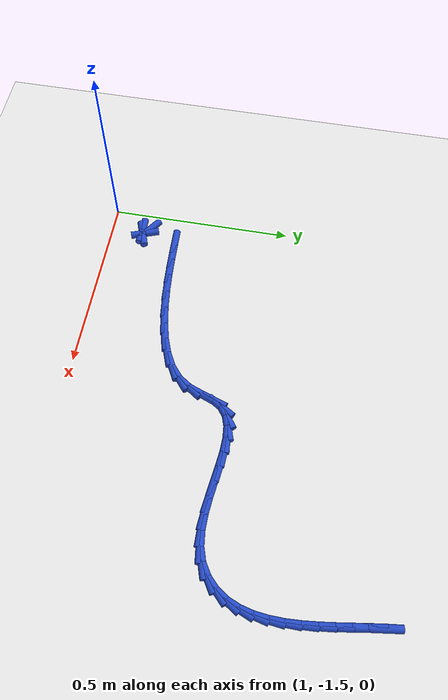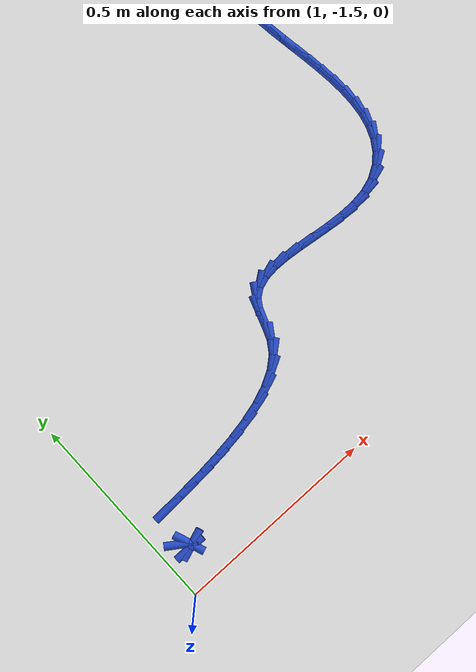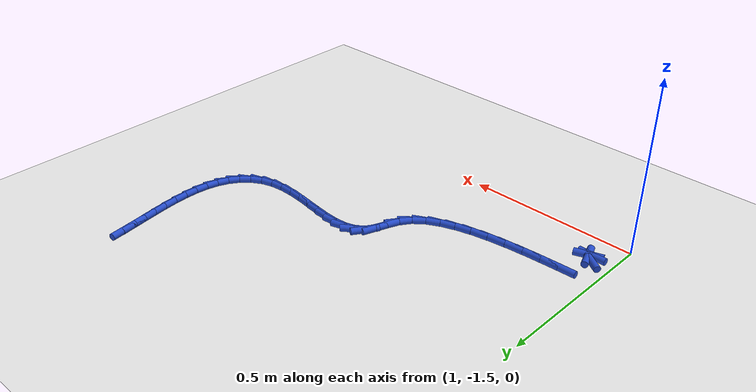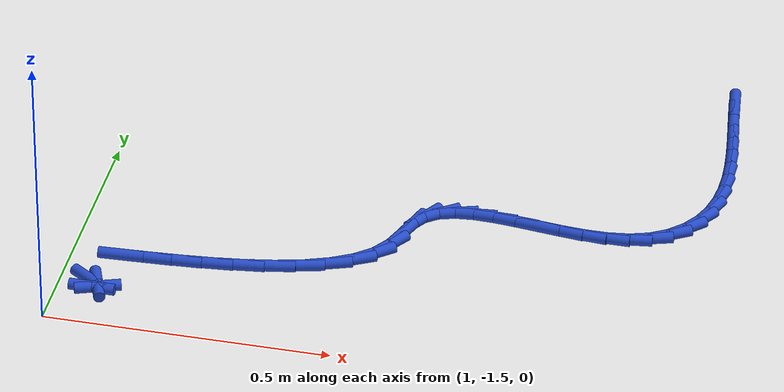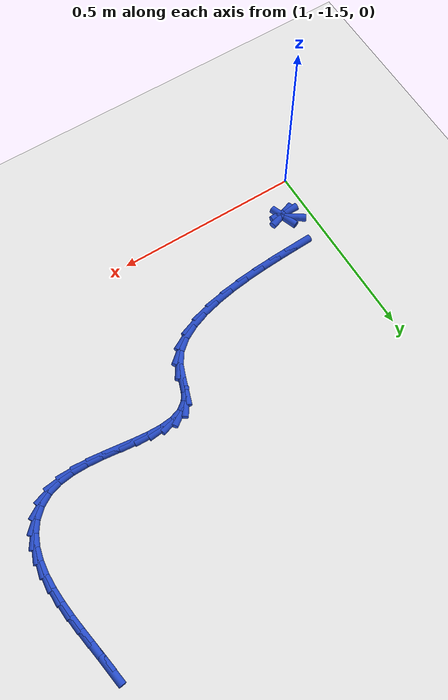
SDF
<sdf version="1.6">
 <world name="default">
  <model name="ground_plane">
   <static>1</static>
   <link name="link">
    <collision name="collision">
     <geometry><plane><normal>0 0 1</normal><size>100 100</size></plane></geometry>
     <surface><friction><ode><mu>100</mu><mu2>50</mu2></ode></friction></surface>
    </collision>
    <visual name="visual">
     <cast_shadows>0</cast_shadows>
     <geometry><plane><normal>0 0 1</normal><size>100 100</size></plane></geometry>
     <material>
      <script><uri>file://media/materials/scripts/gazebo.material</uri><name>Gazebo/WhiteGlow</name></script>
     </material>
    </visual>
   </link>
  </model>
  <model name="line">
   <link name="link_141">
    <pose>2.0285670701113183 -0.6345727002977124 0.01 0 1.57 -1.4315334805851658</pose>
    <collision name="collision">
     <geometry><cylinder><radius>0.01</radius><length>0.08</length></cylinder></geometry>
    </collision>
    <visual name="visual">
     <material>
      <script><name>Gazebo/Blue</name><uri>file://media/materials/scripts/gazebo.material</uri></script>
     </material>
     <geometry><cylinder><radius>0.01</radius><length>0.08</length></cylinder></geometry>
    </visual>
   </link>
   <link name="link_142">
    <pose>2.033438221701225 -0.6693243970464116 0.01 0 1.57 -1.4173790241304136</pose>
    <collision name="collision">
     <geometry><cylinder><radius>0.01</radius><length>0.08</length></cylinder></geometry>
    </collision>
    <visual name="visual">
     <material>
      <script><name>Gazebo/Blue</name><uri>file://media/materials/scripts/gazebo.material</uri></script>
     </material>
     <geometry><cylinder><radius>0.01</radius><length>0.08</length></cylinder></geometry>
    </visual>
   </link>
   <link name="link_143">
    <pose>2.0390529133088573 -0.7056343274212651 0.01 0 1.57 -1.416758596072348</pose>
    <collision name="collision">
     <geometry><cylinder><radius>0.01</radius><length>0.08</length></cylinder></geometry>
    </collision>
    <visual name="visual">
     <material>
      <script><name>Gazebo/Blue</name><uri>file://media/materials/scripts/gazebo.material</uri></script>
     </material>
     <geometry><cylinder><radius>0.01</radius><length>0.08</length></cylinder></geometry>
    </visual>
   </link>
   <link name="link_144">
    <pose>2.044879123798318 -0.7431579698248991 0.01 0 1.57 -1.4322631177795835</pose>
    <collision name="collision">
     <geometry><cylinder><radius>0.01</radius><length>0.08</length></cylinder></geometry>
    </collision>
    <visual name="visual">
     <material>
      <script><name>Gazebo/Blue</name><uri>file://media/materials/scripts/gazebo.material</uri></script>
     </material>
     <geometry><cylinder><radius>0.01</radius><length>0.08</length></cylinder></geometry>
    </visual>
   </link>
   <link name="link_145">
    <pose>2.0502038768240998 -0.7813484236389886 0.01 0 1.57 -1.4639211533162848</pose>
    <collision name="collision">
     <geometry><cylinder><radius>0.01</radius><length>0.08</length></cylinder></geometry>
    </collision>
    <visual name="visual">
     <material>
      <script><name>Gazebo/Blue</name><uri>file://media/materials/scripts/gazebo.material</uri></script>
     </material>
     <geometry><cylinder><radius>0.01</radius><length>0.08</length></cylinder></geometry>
    </visual>
   </link>
   <link name="link_146">
    <pose>2.0543139329366675 -0.8196584939915365 0.01 0 1.57 -1.5132575804763402</pose>
    <collision name="collision">
     <geometry><cylinder><radius>0.01</radius><length>0.08</length></cylinder></geometry>
    </collision>
    <visual name="visual">
     <material>
      <script><name>Gazebo/Blue</name><uri>file://media/materials/scripts/gazebo.material</uri></script>
     </material>
     <geometry><cylinder><radius>0.01</radius><length>0.08</length></cylinder></geometry>
    </visual>
   </link>
   <link name="link_147">
    <pose>2.0564960526864855 -0.8575409860105414 0.01 0 1.57 1.558359026222956</pose>
    <collision name="collision">
     <geometry><cylinder><radius>0.01</radius><length>0.08</length></cylinder></geometry>
    </collision>
    <visual name="visual">
     <material>
      <script><name>Gazebo/Blue</name><uri>file://media/materials/scripts/gazebo.material</uri></script>
     </material>
     <geometry><cylinder><radius>0.01</radius><length>0.08</length></cylinder></geometry>
    </visual>
   </link>
   <link name="link_148">
    <pose>2.056036996624017 -0.8944487048240033 0.01 0 1.57 1.4634420958104837</pose>
    <collision name="collision">
     <geometry><cylinder><radius>0.01</radius><length>0.08</length></cylinder></geometry>
    </collision>
    <visual name="visual">
     <material>
      <script><name>Gazebo/Blue</name><uri>file://media/materials/scripts/gazebo.material</uri></script>
     </material>
     <geometry><cylinder><radius>0.01</radius><length>0.08</length></cylinder></geometry>
    </visual>
   </link>
   <link name="link_149">
    <pose>2.052223525299726 -0.9298344555599221 0.01 0 1.57 1.33851351479543</pose>
    <collision name="collision">
     <geometry><cylinder><radius>0.01</radius><length>0.08</length></cylinder></geometry>
    </collision>
    <visual name="visual">
     <material>
      <script><name>Gazebo/Blue</name><uri>file://media/materials/scripts/gazebo.material</uri></script>
     </material>
     <geometry><cylinder><radius>0.01</radius><length>0.08</length></cylinder></geometry>
    </visual>
   </link>
   <link name="link_150">
    <pose>2.044342399264078 -0.963151043346298 0.01 0 1.57 1.1796115409766532</pose>
    <collision name="collision">
     <geometry><cylinder><radius>0.01</radius><length>0.08</length></cylinder></geometry>
    </collision>
    <visual name="visual">
     <material>
      <script><name>Gazebo/Blue</name><uri>file://media/materials/scripts/gazebo.material</uri></script>
     </material>
     <geometry><cylinder><radius>0.01</radius><length>0.08</length></cylinder></geometry>
    </visual>
   </link>
   <link name="link_151">
    <pose>2.031680379067536 -0.9938512733111309 0.01 0 1.57 0.9878801343291645</pose>
    <collision name="collision">
     <geometry><cylinder><radius>0.01</radius><length>0.08</length></cylinder></geometry>
    </collision>
    <visual name="visual">
     <material>
      <script><name>Gazebo/Blue</name><uri>file://media/materials/scripts/gazebo.material</uri></script>
     </material>
     <geometry><cylinder><radius>0.01</radius><length>0.08</length></cylinder></geometry>
    </visual>
   </link>
   <link name="link_152">
    <pose>2.0135242252605647 -1.0213879505824208 0.01 0 1.57 0.7742023735561363</pose>
    <collision name="collision">
     <geometry><cylinder><radius>0.01</radius><length>0.08</length></cylinder></geometry>
    </collision>
    <visual name="visual">
     <material>
      <script><name>Gazebo/Blue</name><uri>file://media/materials/scripts/gazebo.material</uri></script>
     </material>
     <geometry><cylinder><radius>0.01</radius><length>0.08</length></cylinder></geometry>
    </visual>
   </link>
   <link name="link_153">
    <pose>1.9892056381882934 -1.045168012784978 0.01 0 1.57 0.5471462917034153</pose>
    <collision name="collision">
     <geometry><cylinder><radius>0.01</radius><length>0.08</length></cylinder></geometry>
    </collision>
    <visual name="visual">
     <material>
      <script><name>Gazebo/Blue</name><uri>file://media/materials/scripts/gazebo.material</uri></script>
     </material>
     <geometry><cylinder><radius>0.01</radius><length>0.08</length></cylinder></geometry>
    </visual>
   </link>
   <link name="link_154">
    <pose>1.9591648180939776 -1.063468449266567 0.01 0 1.57 0.3099390565975013</pose>
    <collision name="collision">
     <geometry><cylinder><radius>0.01</radius><length>0.08</length></cylinder></geometry>
    </collision>
    <visual name="visual">
     <material>
      <script><name>Gazebo/Blue</name><uri>file://media/materials/scripts/gazebo.material</uri></script>
     </material>
     <geometry><cylinder><radius>0.01</radius><length>0.08</length></cylinder></geometry>
    </visual>
   </link>
   <link name="link_155">
    <pose>1.9248365317605338 -1.0744624368758298 0.01 0 1.57 0.12487583773043018</pose>
    <collision name="collision">
     <geometry><cylinder><radius>0.01</radius><length>0.08</length></cylinder></geometry>
    </collision>
    <visual name="visual">
     <material>
      <script><name>Gazebo/Blue</name><uri>file://media/materials/scripts/gazebo.material</uri></script>
     </material>
     <geometry><cylinder><radius>0.01</radius><length>0.08</length></cylinder></geometry>
    </visual>
   </link>
   <link name="link_156">
    <pose>1.8872816704655269 -1.0791766616545015 0.01 0 1.57 -0.0012686181432016762</pose>
    <collision name="collision">
     <geometry><cylinder><radius>0.01</radius><length>0.08</length></cylinder></geometry>
    </collision>
    <visual name="visual">
     <material>
      <script><name>Gazebo/Blue</name><uri>file://media/materials/scripts/gazebo.material</uri></script>
     </material>
     <geometry><cylinder><radius>0.01</radius><length>0.08</length></cylinder></geometry>
    </visual>
   </link>
   <link name="link_157">
    <pose>1.8474893364319334 -1.0791261803505048 0.01 0 1.57 -0.08023851713215129</pose>
    <collision name="collision">
     <geometry><cylinder><radius>0.01</radius><length>0.08</length></cylinder></geometry>
    </collision>
    <visual name="visual">
     <material>
      <script><name>Gazebo/Blue</name><uri>file://media/materials/scripts/gazebo.material</uri></script>
     </material>
     <geometry><cylinder><radius>0.01</radius><length>0.08</length></cylinder></geometry>
    </visual>
   </link>
   <link name="link_158">
    <pose>1.8064486318827329 -1.0758260497117618 0.01 0 1.57 -0.12130765190604231</pose>
    <collision name="collision">
     <geometry><cylinder><radius>0.01</radius><length>0.08</length></cylinder></geometry>
    </collision>
    <visual name="visual">
     <material>
      <script><name>Gazebo/Blue</name><uri>file://media/materials/scripts/gazebo.material</uri></script>
     </material>
     <geometry><cylinder><radius>0.01</radius><length>0.08</length></cylinder></geometry>
    </visual>
   </link>
   <link name="link_159">
    <pose>1.7651486590409013 -1.0707913264861946 0.01 0 1.57 -0.12879361118510047</pose>
    <collision name="collision">
     <geometry><cylinder><radius>0.01</radius><length>0.08</length></cylinder></geometry>
    </collision>
    <visual name="visual">
     <material>
      <script><name>Gazebo/Blue</name><uri>file://media/materials/scripts/gazebo.material</uri></script>
     </material>
     <geometry><cylinder><radius>0.01</radius><length>0.08</length></cylinder></geometry>
    </visual>
   </link>
   <link name="link_160">
    <pose>1.7245785201294173 -1.0655370674217262 0.01 0 1.57 -0.1015444047692561</pose>
    <collision name="collision">
     <geometry><cylinder><radius>0.01</radius><length>0.08</length></cylinder></geometry>
    </collision>
    <visual name="visual">
     <material>
      <script><name>Gazebo/Blue</name><uri>file://media/materials/scripts/gazebo.material</uri></script>
     </material>
     <geometry><cylinder><radius>0.01</radius><length>0.08</length></cylinder></geometry>
    </visual>
   </link>
   <link name="link_161">
    <pose>1.6857273173712581 -1.0615783292662784 0.01 0 1.57 -0.03175633711964724</pose>
    <collision name="collision">
     <geometry><cylinder><radius>0.01</radius><length>0.08</length></cylinder></geometry>
    </collision>
    <visual name="visual">
     <material>
      <script><name>Gazebo/Blue</name><uri>file://media/materials/scripts/gazebo.material</uri></script>
     </material>
     <geometry><cylinder><radius>0.01</radius><length>0.08</length></cylinder></geometry>
    </visual>
   </link>
   <link name="link_162">
    <pose>1.6495841529894022 -1.0604301687677742 0.01 0 1.57 0.09761979255955075</pose>
    <collision name="collision">
     <geometry><cylinder><radius>0.01</radius><length>0.08</length></cylinder></geometry>
    </collision>
    <visual name="visual">
     <material>
      <script><name>Gazebo/Blue</name><uri>file://media/materials/scripts/gazebo.material</uri></script>
     </material>
     <geometry><cylinder><radius>0.01</radius><length>0.08</length></cylinder></geometry>
    </visual>
   </link>
   <link name="link_163">
    <pose>1.6171381292068265 -1.0636076426741352 0.01 0 1.57 0.3141092640573255</pose>
    <collision name="collision">
     <geometry><cylinder><radius>0.01</radius><length>0.08</length></cylinder></geometry>
    </collision>
    <visual name="visual">
     <material>
      <script><name>Gazebo/Blue</name><uri>file://media/materials/scripts/gazebo.material</uri></script>
     </material>
     <geometry><cylinder><radius>0.01</radius><length>0.08</length></cylinder></geometry>
    </visual>
   </link>
   <link name="link_164">
    <pose>1.5893783482465091 -1.072625807733284 0.01 0 1.57 0.6379893156503159</pose>
    <collision name="collision">
     <geometry><cylinder><radius>0.01</radius><length>0.08</length></cylinder></geometry>
    </collision>
    <visual name="visual">
     <material>
      <script><name>Gazebo/Blue</name><uri>file://media/materials/scripts/gazebo.material</uri></script>
     </material>
     <geometry><cylinder><radius>0.01</radius><length>0.08</length></cylinder></geometry>
    </visual>
   </link>
   <link name="link_165">
    <pose>1.5672939123314273 -1.088999720693143 0.01 0 1.57 1.0184926986076475</pose>
    <collision name="collision">
     <geometry><cylinder><radius>0.01</radius><length>0.08</length></cylinder></geometry>
    </collision>
    <visual name="visual">
     <material>
      <script><name>Gazebo/Blue</name><uri>file://media/materials/scripts/gazebo.material</uri></script>
     </material>
     <geometry><cylinder><radius>0.01</radius><length>0.08</length></cylinder></geometry>
    </visual>
   </link>
   <link name="link_166">
    <pose>1.5517877195275571 -1.1141607050543356 0.01 0 1.57 1.2391382168447311</pose>
    <collision name="collision">
     <geometry><cylinder><radius>0.01</radius><length>0.08</length></cylinder></geometry>
    </collision>
    <visual name="visual">
     <material>
      <script><name>Gazebo/Blue</name><uri>file://media/materials/scripts/gazebo.material</uri></script>
     </material>
     <geometry><cylinder><radius>0.01</radius><length>0.08</length></cylinder></geometry>
    </visual>
   </link>
   <link name="link_167">
    <pose>1.5406462760112014 -1.1465130190128414 0.01 0 1.57 1.2093540168957995</pose>
    <collision name="collision">
     <geometry><cylinder><radius>0.01</radius><length>0.08</length></cylinder></geometry>
    </collision>
    <visual name="visual">
     <material>
      <script><name>Gazebo/Blue</name><uri>file://media/materials/scripts/gazebo.material</uri></script>
     </material>
     <geometry><cylinder><radius>0.01</radius><length>0.08</length></cylinder></geometry>
    </visual>
   </link>
   <link name="link_168">
    <pose>1.5277386099256605 -1.1806557312200539 0.01 0 1.57 0.9761623523671831</pose>
    <collision name="collision">
     <geometry><cylinder><radius>0.01</radius><length>0.08</length></cylinder></geometry>
    </collision>
    <visual name="visual">
     <material>
      <script><name>Gazebo/Blue</name><uri>file://media/materials/scripts/gazebo.material</uri></script>
     </material>
     <geometry><cylinder><radius>0.01</radius><length>0.08</length></cylinder></geometry>
    </visual>
   </link>
   <link name="link_169">
    <pose>1.507056704129479 -1.2112372380858196 0.01 0 1.57 0.6992923135053776</pose>
    <collision name="collision">
     <geometry><cylinder><radius>0.01</radius><length>0.08</length></cylinder></geometry>
    </collision>
    <visual name="visual">
     <material>
      <script><name>Gazebo/Blue</name><uri>file://media/materials/scripts/gazebo.material</uri></script>
     </material>
     <geometry><cylinder><radius>0.01</radius><length>0.08</length></cylinder></geometry>
    </visual>
   </link>
   <link name="link_170">
    <pose>1.4770990198928962 -1.236434027564991 0.01 0 1.57 0.4942149645727232</pose>
    <collision name="collision">
     <geometry><cylinder><radius>0.01</radius><length>0.08</length></cylinder></geometry>
    </collision>
    <visual name="visual">
     <material>
      <script><name>Gazebo/Blue</name><uri>file://media/materials/scripts/gazebo.material</uri></script>
     </material>
     <geometry><cylinder><radius>0.01</radius><length>0.08</length></cylinder></geometry>
    </visual>
   </link>
   <link name="link_171">
    <pose>1.4393601799569753 -1.2567682622139549 0.01 0 1.57 0.3497070889790285</pose>
    <collision name="collision">
     <geometry><cylinder><radius>0.01</radius><length>0.08</length></cylinder></geometry>
    </collision>
    <visual name="visual">
     <material>
      <script><name>Gazebo/Blue</name><uri>file://media/materials/scripts/gazebo.material</uri></script>
     </material>
     <geometry><cylinder><radius>0.01</radius><length>0.08</length></cylinder></geometry>
    </visual>
   </link>
   <link name="link_172">
    <pose>1.395388886487271 -1.2728044430056795 0.01 0 1.57 0.24766307218256456</pose>
    <collision name="collision">
     <geometry><cylinder><radius>0.01</radius><length>0.08</length></cylinder></geometry>
    </collision>
    <visual name="visual">
     <material>
      <script><name>Gazebo/Blue</name><uri>file://media/materials/scripts/gazebo.material</uri></script>
     </material>
     <geometry><cylinder><radius>0.01</radius><length>0.08</length></cylinder></geometry>
    </visual>
   </link>
   <link name="link_173">
    <pose>1.3467338416493373 -1.2851070709131327 0.01 0 1.57 0.17456260808053067</pose>
    <collision name="collision">
     <geometry><cylinder><radius>0.01</radius><length>0.08</length></cylinder></geometry>
    </collision>
    <visual name="visual">
     <material>
      <script><name>Gazebo/Blue</name><uri>file://media/materials/scripts/gazebo.material</uri></script>
     </material>
     <geometry><cylinder><radius>0.01</radius><length>0.08</length></cylinder></geometry>
    </visual>
   </link>
   <link name="link_174">
    <pose>1.2949437476087278 -1.2942406469092824 0.01 0 1.57 0.1217157075212578</pose>
    <collision name="collision">
     <geometry><cylinder><radius>0.01</radius><length>0.08</length></cylinder></geometry>
    </collision>
    <visual name="visual">
     <material>
      <script><name>Gazebo/Blue</name><uri>file://media/materials/scripts/gazebo.material</uri></script>
     </material>
     <geometry><cylinder><radius>0.01</radius><length>0.08</length></cylinder></geometry>
    </visual>
   </link>
   <link name="link_175">
    <pose>1.2415673065309971 -1.300769671967096 0.01 0 1.57 0.0838440120551052</pose>
    <collision name="collision">
     <geometry><cylinder><radius>0.01</radius><length>0.08</length></cylinder></geometry>
    </collision>
    <visual name="visual">
     <material>
      <script><name>Gazebo/Blue</name><uri>file://media/materials/scripts/gazebo.material</uri></script>
     </material>
     <geometry><cylinder><radius>0.01</radius><length>0.08</length></cylinder></geometry>
    </visual>
   </link>
   <link name="link_176">
    <pose>1.1881532205817 -1.3052586470595418 0.01 0 1.57 0.05799366824834295</pose>
    <collision name="collision">
     <geometry><cylinder><radius>0.01</radius><length>0.08</length></cylinder></geometry>
    </collision>
    <visual name="visual">
     <material>
      <script><name>Gazebo/Blue</name><uri>file://media/materials/scripts/gazebo.material</uri></script>
     </material>
     <geometry><cylinder><radius>0.01</radius><length>0.08</length></cylinder></geometry>
    </visual>
   </link>
   <link name="link_177">
    <pose>1.1362501919263883 -1.308272073159587 0.01 0 1.57 0.043016799997466854</pose>
    <collision name="collision">
     <geometry><cylinder><radius>0.01</radius><length>0.08</length></cylinder></geometry>
    </collision>
    <visual name="visual">
     <material>
      <script><name>Gazebo/Blue</name><uri>file://media/materials/scripts/gazebo.material</uri></script>
     </material>
     <geometry><cylinder><radius>0.01</radius><length>0.08</length></cylinder></geometry>
    </visual>
   </link>
   <link name="link_178">
    <pose>1.0874069227306173 -1.3103744512401998 0.01 0 1.57 0.03967259851560328</pose>
    <collision name="collision">
     <geometry><cylinder><radius>0.01</radius><length>0.08</length></cylinder></geometry>
    </collision>
    <visual name="visual">
     <material>
      <script><name>Gazebo/Blue</name><uri>file://media/materials/scripts/gazebo.material</uri></script>
     </material>
     <geometry><cylinder><radius>0.01</radius><length>0.08</length></cylinder></geometry>
    </visual>
   </link>
   <link name="link_188">
    <pose>1.0541053761722827 -1.3913518780117358 0.01 0 1.57 -0.5936687154126713</pose>
    <collision name="collision">
     <geometry><cylinder><radius>0.01</radius><length>0.08</length></cylinder></geometry>
    </collision>
    <visual name="visual">
     <material>
      <script><name>Gazebo/Blue</name><uri>file://media/materials/scripts/gazebo.material</uri></script>
     </material>
     <geometry><cylinder><radius>0.01</radius><length>0.08</length></cylinder></geometry>
    </visual>
   </link>
   <link name="link_189">
    <pose>1.069638318902313 -1.4018347841343455 0.01 0 1.57 -1.2171753826960159</pose>
    <collision name="collision">
     <geometry><cylinder><radius>0.01</radius><length>0.08</length></cylinder></geometry>
    </collision>
    <visual name="visual">
     <material>
      <script><name>Gazebo/Blue</name><uri>file://media/materials/scripts/gazebo.material</uri></script>
     </material>
     <geometry><cylinder><radius>0.01</radius><length>0.08</length></cylinder></geometry>
    </visual>
   </link>
   <link name="link_190">
    <pose>1.0721481764569551 -1.4086340350465076 0.01 0 1.57 0.34247304217494495</pose>
    <collision name="collision">
     <geometry><cylinder><radius>0.01</radius><length>0.08</length></cylinder></geometry>
    </collision>
    <visual name="visual">
     <material>
      <script><name>Gazebo/Blue</name><uri>file://media/materials/scripts/gazebo.material</uri></script>
     </material>
     <geometry><cylinder><radius>0.01</radius><length>0.08</length></cylinder></geometry>
    </visual>
   </link>
   <link name="link_191">
    <pose>1.0630276846380078 -1.4118856893288152 0.01 0 1.57 -0.008259079509924052</pose>
    <collision name="collision">
     <geometry><cylinder><radius>0.01</radius><length>0.08</length></cylinder></geometry>
    </collision>
    <visual name="visual">
     <material>
      <script><name>Gazebo/Blue</name><uri>file://media/materials/scripts/gazebo.material</uri></script>
     </material>
     <geometry><cylinder><radius>0.01</radius><length>0.08</length></cylinder></geometry>
    </visual>
   </link>
  </model>
 </world>
</sdf>
